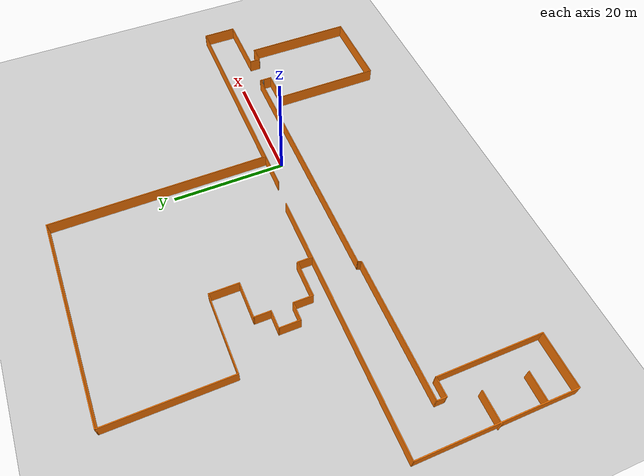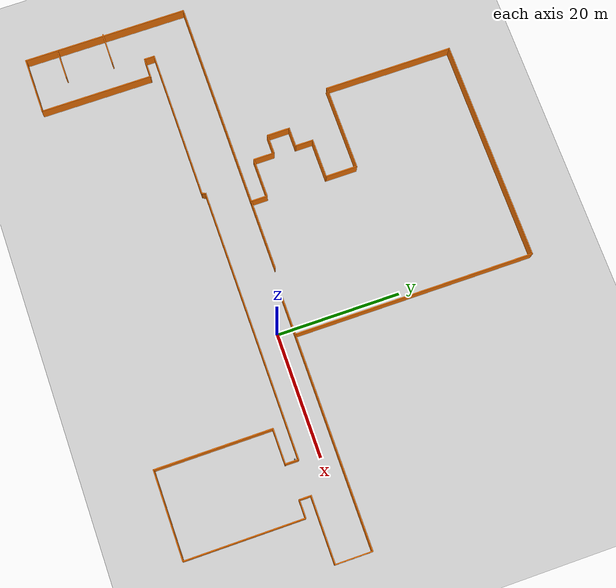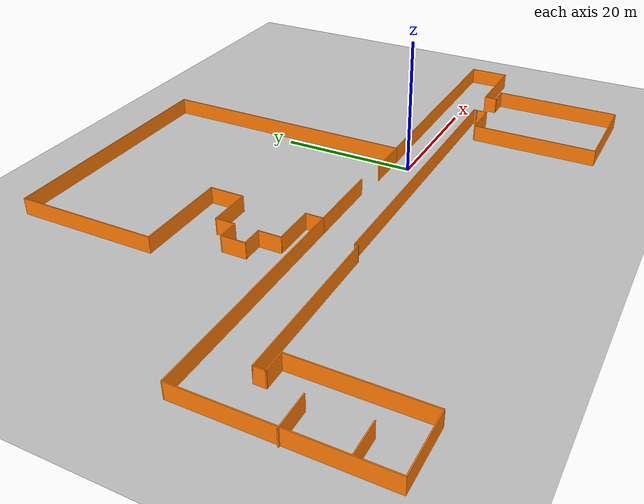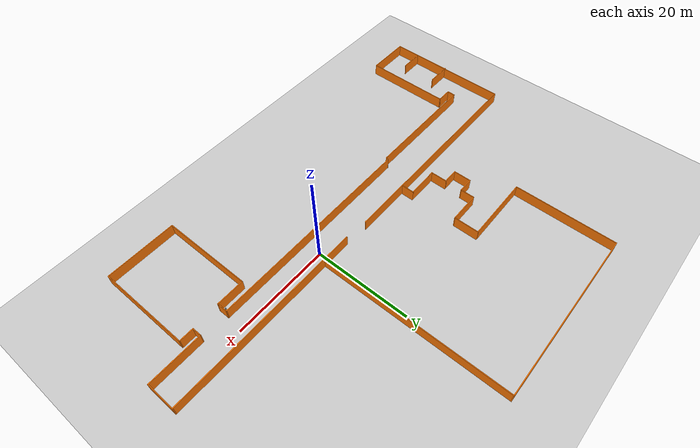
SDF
<?xml version="1.0" ?>
<sdf version="1.4">
  <world name="default">
    <!-- a GLOBAL LIGHT SOURCE -->
    <include>
      <uri>model://sun</uri>
    </include>
    <include>
      <uri>model://ground_plane</uri>
    </include>
    <physics type='ode'>
      <max_step_size>0.01</max_step_size>
      <real_time_factor>1</real_time_factor>
      <real_time_update_rate>100</real_time_update_rate>
      <gravity>0 0 -9.8</gravity>
    </physics>

  <model name='a2'>
    <pose frame=''>-9.85897 8.53324 0 0 -0 0</pose>
    <link name='Wall_15'>
      <collision name='Wall_15_Collision'>
        <geometry>
          <box>
            <size>0.15 0.15 2.5</size>
          </box>
        </geometry>
        <pose frame=''>0 0 1.25 0 -0 0</pose>
      </collision>
      <visual name='Wall_15_Visual'>
        <pose frame=''>0 0 1.25 0 -0 0</pose>
        <geometry>
          <box>
            <size>0.15 0.15 2.5</size>
          </box>
        </geometry>
        <material>
          <script>
            <uri>file://media/materials/scripts/gazebo.material</uri>
            <name>Gazebo/Grey</name>
          </script>
          <ambient>1 1 1 1</ambient>
        </material>
      </visual>
      <pose frame=''>28.959 -12.3832 0 0 -0 0</pose>
    </link>
    <link name='Wall_17'>
      <collision name='Wall_17_Collision'>
        <geometry>
          <box>
            <size>44 0.15 2.5</size>
          </box>
        </geometry>
        <pose frame=''>0 0 1.25 0 -0 0</pose>
      </collision>
      <visual name='Wall_17_Visual'>
        <pose frame=''>0 0 1.25 0 -0 0</pose>
        <geometry>
          <box>
            <size>44 0.15 2.5</size>
          </box>
        </geometry>
        <material>
          <script>
            <uri>file://media/materials/scripts/gazebo.material</uri>
            <name>Gazebo/Grey</name>
          </script>
          <ambient>0.996078 0.47451 0.0196078 1</ambient>
        </material>
      </visual>
      <pose frame=''>7.29394 -11.875 0 0 -0 0</pose>
    </link>
    <link name='Wall_18'>
      <collision name='Wall_18_Collision'>
        <geometry>
          <box>
            <size>2.25 0.15 2.5</size>
          </box>
        </geometry>
        <pose frame=''>0 0 1.25 0 -0 0</pose>
      </collision>
      <visual name='Wall_18_Visual'>
        <pose frame=''>0 0 1.25 0 -0 0</pose>
        <geometry>
          <box>
            <size>2.25 0.15 2.5</size>
          </box>
        </geometry>
        <material>
          <script>
            <uri>file://media/materials/scripts/gazebo.material</uri>
            <name>Gazebo/Grey</name>
          </script>
          <ambient>0.996078 0.47451 0.0196078 1</ambient>
        </material>
      </visual>
      <pose frame=''>29.2189 -12.925 0 0 0 -1.5708</pose>
    </link>
    <link name='Wall_19'>
      <collision name='Wall_19_Collision'>
        <geometry>
          <box>
            <size>5.75 0.15 2.5</size>
          </box>
        </geometry>
        <pose frame=''>0 0 1.25 0 -0 0</pose>
      </collision>
      <visual name='Wall_19_Visual'>
        <pose frame=''>0 0 1.25 0 -0 0</pose>
        <geometry>
          <box>
            <size>5.75 0.15 2.5</size>
          </box>
        </geometry>
        <material>
          <script>
            <uri>file://media/materials/scripts/gazebo.material</uri>
            <name>Gazebo/Grey</name>
          </script>
          <ambient>0.996078 0.47451 0.0196078 1</ambient>
        </material>
      </visual>
      <pose frame=''>26.4189 -13.975 0 0 -0 3.14159</pose>
    </link>
    <link name='Wall_20'>
      <collision name='Wall_20_Collision'>
        <geometry>
          <box>
            <size>19 0.15 2.5</size>
          </box>
        </geometry>
        <pose frame=''>0 0 1.25 0 -0 0</pose>
      </collision>
      <visual name='Wall_20_Visual'>
        <pose frame=''>0 0 1.25 0 -0 0</pose>
        <geometry>
          <box>
            <size>19 0.15 2.5</size>
          </box>
        </geometry>
        <material>
          <script>
            <uri>file://media/materials/scripts/gazebo.material</uri>
            <name>Gazebo/Grey</name>
          </script>
          <ambient>0.996078 0.47451 0.0196078 1</ambient>
        </material>
      </visual>
      <pose frame=''>23.6189 -23.4 0 0 0 -1.5708</pose>
    </link>
    <link name='Wall_21'>
      <collision name='Wall_21_Collision'>
        <geometry>
          <box>
            <size>14.25 0.15 2.5</size>
          </box>
        </geometry>
        <pose frame=''>0 0 1.25 0 -0 0</pose>
      </collision>
      <visual name='Wall_21_Visual'>
        <pose frame=''>0 0 1.25 0 -0 0</pose>
        <geometry>
          <box>
            <size>14.25 0.15 2.5</size>
          </box>
        </geometry>
        <material>
          <script>
            <uri>file://media/materials/scripts/gazebo.material</uri>
            <name>Gazebo/Grey</name>
          </script>
          <ambient>0.996078 0.47451 0.0196078 1</ambient>
        </material>
      </visual>
      <pose frame=''>30.6689 -32.825 0 0 -0 0</pose>
    </link>
    <link name='Wall_22'>
      <collision name='Wall_22_Collision'>
        <geometry>
          <box>
            <size>19.25 0.15 2.5</size>
          </box>
        </geometry>
        <pose frame=''>0 0 1.25 0 -0 0</pose>
      </collision>
      <visual name='Wall_22_Visual'>
        <pose frame=''>0 0 1.25 0 -0 0</pose>
        <geometry>
          <box>
            <size>19.25 0.15 2.5</size>
          </box>
        </geometry>
        <material>
          <script>
            <uri>file://media/materials/scripts/gazebo.material</uri>
            <name>Gazebo/Grey</name>
          </script>
          <ambient>0.996078 0.47451 0.0196078 1</ambient>
        </material>
      </visual>
      <pose frame=''>37.7189 -23.275 0 0 -0 1.5708</pose>
    </link>
    <link name='Wall_23'>
      <collision name='Wall_23_Collision'>
        <geometry>
          <box>
            <size>3 0.15 2.5</size>
          </box>
        </geometry>
        <pose frame=''>0 0 1.25 0 -0 0</pose>
      </collision>
      <visual name='Wall_23_Visual'>
        <pose frame=''>0 0 1.25 0 -0 0</pose>
        <geometry>
          <box>
            <size>3 0.15 2.5</size>
          </box>
        </geometry>
        <material>
          <script>
            <uri>file://media/materials/scripts/gazebo.material</uri>
            <name>Gazebo/Grey</name>
          </script>
          <ambient>0.996078 0.47451 0.0196078 1</ambient>
        </material>
      </visual>
      <pose frame=''>36.2939 -13.725 0 0 -0 3.14159</pose>
    </link>
    <link name='Wall_24'>
      <collision name='Wall_24_Collision'>
        <geometry>
          <box>
            <size>2 0.15 2.5</size>
          </box>
        </geometry>
        <pose frame=''>0 0 1.25 0 -0 0</pose>
      </collision>
      <visual name='Wall_24_Visual'>
        <pose frame=''>0 0 1.25 0 -0 0</pose>
        <geometry>
          <box>
            <size>2 0.15 2.5</size>
          </box>
        </geometry>
        <material>
          <script>
            <uri>file://media/materials/scripts/gazebo.material</uri>
            <name>Gazebo/Grey</name>
          </script>
          <ambient>0.996078 0.47451 0.0196078 1</ambient>
        </material>
      </visual>
      <pose frame=''>34.8689 -12.8 0 0 -0 1.5708</pose>
    </link>
    <link name='Wall_25'>
      <collision name='Wall_25_Collision'>
        <geometry>
          <box>
            <size>10.75 0.15 2.5</size>
          </box>
        </geometry>
        <pose frame=''>0 0 1.25 0 -0 0</pose>
      </collision>
      <visual name='Wall_25_Visual'>
        <pose frame=''>0 0 1.25 0 -0 0</pose>
        <geometry>
          <box>
            <size>10.75 0.15 2.5</size>
          </box>
        </geometry>
        <material>
          <script>
            <uri>file://media/materials/scripts/gazebo.material</uri>
            <name>Gazebo/Grey</name>
          </script>
          <ambient>0.996078 0.47451 0.0196078 1</ambient>
        </material>
      </visual>
      <pose frame=''>40.1689 -11.875 0 0 -0 0</pose>
    </link>
    <link name='Wall_26'>
      <collision name='Wall_26_Collision'>
        <geometry>
          <box>
            <size>6 0.15 2.5</size>
          </box>
        </geometry>
        <pose frame=''>0 0 1.25 0 -0 0</pose>
      </collision>
      <visual name='Wall_26_Visual'>
        <pose frame=''>0 0 1.25 0 -0 0</pose>
        <geometry>
          <box>
            <size>6 0.15 2.5</size>
          </box>
        </geometry>
        <material>
          <script>
            <uri>file://media/materials/scripts/gazebo.material</uri>
            <name>Gazebo/Grey</name>
          </script>
          <ambient>0.996078 0.47451 0.0196078 1</ambient>
        </material>
      </visual>
      <pose frame=''>45.4689 -8.95 0 0 -0 1.5708</pose>
    </link>
    <link name='Wall_27'>
      <collision name='Wall_27_Collision'>
        <geometry>
          <box>
            <size>34.5 0.15 2.5</size>
          </box>
        </geometry>
        <pose frame=''>0 0 1.25 0 -0 0</pose>
      </collision>
      <visual name='Wall_27_Visual'>
        <pose frame=''>0 0 1.25 0 -0 0</pose>
        <geometry>
          <box>
            <size>34.5 0.15 2.5</size>
          </box>
        </geometry>
        <material>
          <script>
            <uri>file://media/materials/scripts/gazebo.material</uri>
            <name>Gazebo/Grey</name>
          </script>
          <ambient>0.996078 0.47451 0.0196078 1</ambient>
        </material>
      </visual>
      <pose frame=''>28.2939 -6.025 0 0 -0 3.14159</pose>
    </link>
    <link name='Wall_28'>
      <collision name='Wall_28_Collision'>
        <geometry>
          <box>
            <size>39 0.15 2.5</size>
          </box>
        </geometry>
        <pose frame=''>0 0 1.25 0 -0 0</pose>
      </collision>
      <visual name='Wall_28_Visual'>
        <pose frame=''>0 0 1.25 0 -0 0</pose>
        <geometry>
          <box>
            <size>39 0.15 2.5</size>
          </box>
        </geometry>
        <material>
          <script>
            <uri>file://media/materials/scripts/gazebo.material</uri>
            <name>Gazebo/Grey</name>
          </script>
          <ambient>0.996078 0.47451 0.0196078 1</ambient>
        </material>
      </visual>
      <pose frame=''>11.1189 13.4 0 0 -0 1.5708</pose>
    </link>
    <link name='Wall_29'>
      <collision name='Wall_29_Collision'>
        <geometry>
          <box>
            <size>36.25 0.15 2.5</size>
          </box>
        </geometry>
        <pose frame=''>0 0 1.25 0 -0 0</pose>
      </collision>
      <visual name='Wall_29_Visual'>
        <pose frame=''>0 0 1.25 0 -0 0</pose>
        <geometry>
          <box>
            <size>36.25 0.15 2.5</size>
          </box>
        </geometry>
        <material>
          <script>
            <uri>file://media/materials/scripts/gazebo.material</uri>
            <name>Gazebo/Grey</name>
          </script>
          <ambient>0.996078 0.47451 0.0196078 1</ambient>
        </material>
      </visual>
      <pose frame=''>-6.93106 32.825 0 0 -0 3.14159</pose>
    </link>
    <link name='Wall_30'>
      <collision name='Wall_30_Collision'>
        <geometry>
          <box>
            <size>21 0.15 2.5</size>
          </box>
        </geometry>
        <pose frame=''>0 0 1.25 0 -0 0</pose>
      </collision>
      <visual name='Wall_30_Visual'>
        <pose frame=''>0 0 1.25 0 -0 0</pose>
        <geometry>
          <box>
            <size>21 0.15 2.5</size>
          </box>
        </geometry>
        <material>
          <script>
            <uri>file://media/materials/scripts/gazebo.material</uri>
            <name>Gazebo/Grey</name>
          </script>
          <ambient>0.996078 0.47451 0.0196078 1</ambient>
        </material>
      </visual>
      <pose frame=''>-24.9811 22.4 0 0 0 -1.5708</pose>
    </link>
    <link name='Wall_31'>
      <collision name='Wall_31_Collision'>
        <geometry>
          <box>
            <size>14 0.15 2.5</size>
          </box>
        </geometry>
        <pose frame=''>0 0 1.25 0 -0 0</pose>
      </collision>
      <visual name='Wall_31_Visual'>
        <pose frame=''>0 0 1.25 0 -0 0</pose>
        <geometry>
          <box>
            <size>14 0.15 2.5</size>
          </box>
        </geometry>
        <material>
          <script>
            <uri>file://media/materials/scripts/gazebo.material</uri>
            <name>Gazebo/Grey</name>
          </script>
          <ambient>0.996078 0.47451 0.0196078 1</ambient>
        </material>
      </visual>
      <pose frame=''>-18.0561 11.975 0 0 -0 0</pose>
    </link>
    <link name='Wall_32'>
      <collision name='Wall_32_Collision'>
        <geometry>
          <box>
            <size>5.25 0.15 2.5</size>
          </box>
        </geometry>
        <pose frame=''>0 0 1.25 0 -0 0</pose>
      </collision>
      <visual name='Wall_32_Visual'>
        <pose frame=''>0 0 1.25 0 -0 0</pose>
        <geometry>
          <box>
            <size>5.25 0.15 2.5</size>
          </box>
        </geometry>
        <material>
          <script>
            <uri>file://media/materials/scripts/gazebo.material</uri>
            <name>Gazebo/Grey</name>
          </script>
          <ambient>0.996078 0.47451 0.0196078 1</ambient>
        </material>
      </visual>
      <pose frame=''>-11.1311 9.425 0 0 0 -1.5708</pose>
    </link>
    <link name='Wall_33'>
      <collision name='Wall_33_Collision'>
        <geometry>
          <box>
            <size>6.5 0.15 2.5</size>
          </box>
        </geometry>
        <pose frame=''>0 0 1.25 0 -0 0</pose>
      </collision>
      <visual name='Wall_33_Visual'>
        <pose frame=''>0 0 1.25 0 -0 0</pose>
        <geometry>
          <box>
            <size>6.5 0.15 2.5</size>
          </box>
        </geometry>
        <material>
          <script>
            <uri>file://media/materials/scripts/gazebo.material</uri>
            <name>Gazebo/Grey</name>
          </script>
          <ambient>0.996078 0.47451 0.0196078 1</ambient>
        </material>
      </visual>
      <pose frame=''>-14.3061 6.875 0 0 -0 3.14159</pose>
    </link>
    <link name='Wall_34'>
      <collision name='Wall_34_Collision'>
        <geometry>
          <box>
            <size>3 0.15 2.5</size>
          </box>
        </geometry>
        <pose frame=''>0 0 1.25 0 -0 0</pose>
      </collision>
      <visual name='Wall_34_Visual'>
        <pose frame=''>0 0 1.25 0 -0 0</pose>
        <geometry>
          <box>
            <size>3 0.15 2.5</size>
          </box>
        </geometry>
        <material>
          <script>
            <uri>file://media/materials/scripts/gazebo.material</uri>
            <name>Gazebo/Grey</name>
          </script>
          <ambient>0.996078 0.47451 0.0196078 1</ambient>
        </material>
      </visual>
      <pose frame=''>-17.4811 5.45 0 0 0 -1.5708</pose>
    </link>
    <link name='Wall_35'>
      <collision name='Wall_35_Collision'>
        <geometry>
          <box>
            <size>3.25 0.15 2.5</size>
          </box>
        </geometry>
        <pose frame=''>0 0 1.25 0 -0 0</pose>
      </collision>
      <visual name='Wall_35_Visual'>
        <pose frame=''>0 0 1.25 0 -0 0</pose>
        <geometry>
          <box>
            <size>3.25 0.15 2.5</size>
          </box>
        </geometry>
        <material>
          <script>
            <uri>file://media/materials/scripts/gazebo.material</uri>
            <name>Gazebo/Grey</name>
          </script>
          <ambient>0.996078 0.47451 0.0196078 1</ambient>
        </material>
      </visual>
      <pose frame=''>-19.0311 4.025 0 0 -0 3.14159</pose>
    </link>
    <link name='Wall_36'>
      <collision name='Wall_36_Collision'>
        <geometry>
          <box>
            <size>3.75 0.15 2.5</size>
          </box>
        </geometry>
        <pose frame=''>0 0 1.25 0 -0 0</pose>
      </collision>
      <visual name='Wall_36_Visual'>
        <pose frame=''>0 0 1.25 0 -0 0</pose>
        <geometry>
          <box>
            <size>3.75 0.15 2.5</size>
          </box>
        </geometry>
        <material>
          <script>
            <uri>file://media/materials/scripts/gazebo.material</uri>
            <name>Gazebo/Grey</name>
          </script>
          <ambient>0.996078 0.47451 0.0196078 1</ambient>
        </material>
      </visual>
      <pose frame=''>-20.5811 2.225 0 0 0 -1.5708</pose>
    </link>
    <link name='Wall_37'>
      <collision name='Wall_37_Collision'>
        <geometry>
          <box>
            <size>3.25 0.15 2.5</size>
          </box>
        </geometry>
        <pose frame=''>0 0 1.25 0 -0 0</pose>
      </collision>
      <visual name='Wall_37_Visual'>
        <pose frame=''>0 0 1.25 0 -0 0</pose>
        <geometry>
          <box>
            <size>3.25 0.15 2.5</size>
          </box>
        </geometry>
        <material>
          <script>
            <uri>file://media/materials/scripts/gazebo.material</uri>
            <name>Gazebo/Grey</name>
          </script>
          <ambient>0.996078 0.47451 0.0196078 1</ambient>
        </material>
      </visual>
      <pose frame=''>-19.0311 0.424999 0 0 -0 0</pose>
    </link>
    <link name='Wall_38'>
      <collision name='Wall_38_Collision'>
        <geometry>
          <box>
            <size>3.5 0.15 2.5</size>
          </box>
        </geometry>
        <pose frame=''>0 0 1.25 0 -0 0</pose>
      </collision>
      <visual name='Wall_38_Visual'>
        <pose frame=''>0 0 1.25 0 -0 0</pose>
        <geometry>
          <box>
            <size>3.5 0.15 2.5</size>
          </box>
        </geometry>
        <material>
          <script>
            <uri>file://media/materials/scripts/gazebo.material</uri>
            <name>Gazebo/Grey</name>
          </script>
          <ambient>0.996078 0.47451 0.0196078 1</ambient>
        </material>
      </visual>
      <pose frame=''>-17.4811 -1.25 0 0 0 -1.5708</pose>
    </link>
    <link name='Wall_39'>
      <collision name='Wall_39_Collision'>
        <geometry>
          <box>
            <size>6.5 0.15 2.5</size>
          </box>
        </geometry>
        <pose frame=''>0 0 1.25 0 -0 0</pose>
      </collision>
      <visual name='Wall_39_Visual'>
        <pose frame=''>0 0 1.25 0 -0 0</pose>
        <geometry>
          <box>
            <size>6.5 0.15 2.5</size>
          </box>
        </geometry>
        <material>
          <script>
            <uri>file://media/materials/scripts/gazebo.material</uri>
            <name>Gazebo/Grey</name>
          </script>
          <ambient>0.996078 0.47451 0.0196078 1</ambient>
        </material>
      </visual>
      <pose frame=''>-14.3061 -2.925 0 0 -0 0</pose>
    </link>
    <link name='Wall_40'>
      <collision name='Wall_40_Collision'>
        <geometry>
          <box>
            <size>2.75 0.15 2.5</size>
          </box>
        </geometry>
        <pose frame=''>0 0 1.25 0 -0 0</pose>
      </collision>
      <visual name='Wall_40_Visual'>
        <pose frame=''>0 0 1.25 0 -0 0</pose>
        <geometry>
          <box>
            <size>2.75 0.15 2.5</size>
          </box>
        </geometry>
        <material>
          <script>
            <uri>file://media/materials/scripts/gazebo.material</uri>
            <name>Gazebo/Grey</name>
          </script>
          <ambient>0.996078 0.47451 0.0196078 1</ambient>
        </material>
      </visual>
      <pose frame=''>-11.1311 -4.225 0 0 0 -1.5708</pose>
    </link>
    <link name='Wall_41'>
      <collision name='Wall_41_Collision'>
        <geometry>
          <box>
            <size>34.25 0.15 2.5</size>
          </box>
        </geometry>
        <pose frame=''>0 0 1.25 0 -0 0</pose>
      </collision>
      <visual name='Wall_41_Visual'>
        <pose frame=''>0 0 1.25 0 -0 0</pose>
        <geometry>
          <box>
            <size>34.25 0.15 2.5</size>
          </box>
        </geometry>
        <material>
          <script>
            <uri>file://media/materials/scripts/gazebo.material</uri>
            <name>Gazebo/Grey</name>
          </script>
          <ambient>0.996078 0.47451 0.0196078 1</ambient>
        </material>
      </visual>
      <pose frame=''>-28.1811 -5.525 0 0 -0 3.14159</pose>
    </link>
    <link name='Wall_42'>
      <collision name='Wall_42_Collision'>
        <geometry>
          <box>
            <size>26.75 0.15 2.5</size>
          </box>
        </geometry>
        <pose frame=''>0 0 1.25 0 -0 0</pose>
      </collision>
      <visual name='Wall_42_Visual'>
        <pose frame=''>0 0 1.25 0 -0 0</pose>
        <geometry>
          <box>
            <size>26.75 0.15 2.5</size>
          </box>
        </geometry>
        <material>
          <script>
            <uri>file://media/materials/scripts/gazebo.material</uri>
            <name>Gazebo/Grey</name>
          </script>
          <ambient>0.996078 0.47451 0.0196078 1</ambient>
        </material>
      </visual>
      <pose frame=''>-45.2311 -18.825 0 0 0 -1.5708</pose>
    </link>
    <link name='Wall_43'>
      <collision name='Wall_43_Collision'>
        <geometry>
          <box>
            <size>9.25 0.15 2.5</size>
          </box>
        </geometry>
        <pose frame=''>0 0 1.25 0 -0 0</pose>
      </collision>
      <visual name='Wall_43_Visual'>
        <pose frame=''>0 0 1.25 0 -0 0</pose>
        <geometry>
          <box>
            <size>9.25 0.15 2.5</size>
          </box>
        </geometry>
        <material>
          <script>
            <uri>file://media/materials/scripts/gazebo.material</uri>
            <name>Gazebo/Grey</name>
          </script>
          <ambient>0.996078 0.47451 0.0196078 1</ambient>
        </material>
      </visual>
      <pose frame=''>-40.6811 -32.125 0 0 -0 0</pose>
    </link>
    <link name='Wall_44'>
      <collision name='Wall_44_Collision'>
        <geometry>
          <box>
            <size>18.25 0.15 2.5</size>
          </box>
        </geometry>
        <pose frame=''>0 0 1.25 0 -0 0</pose>
      </collision>
      <visual name='Wall_44_Visual'>
        <pose frame=''>0 0 1.25 0 -0 0</pose>
        <geometry>
          <box>
            <size>18.25 0.15 2.5</size>
          </box>
        </geometry>
        <material>
          <script>
            <uri>file://media/materials/scripts/gazebo.material</uri>
            <name>Gazebo/Grey</name>
          </script>
          <ambient>0.996078 0.47451 0.0196078 1</ambient>
        </material>
      </visual>
      <pose frame=''>-36.1311 -23.075 0 0 -0 1.5708</pose>
    </link>
    <link name='Wall_45'>
      <collision name='Wall_45_Collision'>
        <geometry>
          <box>
            <size>3.25 0.15 2.5</size>
          </box>
        </geometry>
        <pose frame=''>0 0 1.25 0 -0 0</pose>
      </collision>
      <visual name='Wall_45_Visual'>
        <pose frame=''>0 0 1.25 0 -0 0</pose>
        <geometry>
          <box>
            <size>3.25 0.15 2.5</size>
          </box>
        </geometry>
        <material>
          <script>
            <uri>file://media/materials/scripts/gazebo.material</uri>
            <name>Gazebo/Grey</name>
          </script>
          <ambient>0.996078 0.47451 0.0196078 1</ambient>
        </material>
      </visual>
      <pose frame=''>-37.6811 -14.025 0 0 -0 3.14159</pose>
    </link>
    <link name='Wall_46'>
      <collision name='Wall_46_Collision'>
        <geometry>
          <box>
            <size>1.75 0.15 2.5</size>
          </box>
        </geometry>
        <pose frame=''>0 0 1.25 0 -0 0</pose>
      </collision>
      <visual name='Wall_46_Visual'>
        <pose frame=''>0 0 1.25 0 -0 0</pose>
        <geometry>
          <box>
            <size>1.75 0.15 2.5</size>
          </box>
        </geometry>
        <material>
          <script>
            <uri>file://media/materials/scripts/gazebo.material</uri>
            <name>Gazebo/Grey</name>
          </script>
          <ambient>0.996078 0.47451 0.0196078 1</ambient>
        </material>
      </visual>
      <pose frame=''>-39.2311 -13.225 0 0 -0 1.5708</pose>
    </link>
    <link name='Wall_47'>
      <collision name='Wall_47_Collision'>
        <geometry>
          <box>
            <size>24.5 0.15 2.5</size>
          </box>
        </geometry>
        <pose frame=''>0 0 1.25 0 -0 0</pose>
      </collision>
      <visual name='Wall_47_Visual'>
        <pose frame=''>0 0 1.25 0 -0 0</pose>
        <geometry>
          <box>
            <size>24.5 0.15 2.5</size>
          </box>
        </geometry>
        <material>
          <script>
            <uri>file://media/materials/scripts/gazebo.material</uri>
            <name>Gazebo/Grey</name>
          </script>
          <ambient>0.996078 0.47451 0.0196078 1</ambient>
        </material>
      </visual>
      <pose frame=''>-27.0561 -12.425 0 0 -0 0</pose>
    </link>
    <link name='Wall_48'>
      <collision name='Wall_48_Collision'>
        <geometry>
          <box>
            <size>0.754152 0.15 2.5</size>
          </box>
        </geometry>
        <pose frame=''>0 0 1.25 0 -0 0</pose>
      </collision>
      <visual name='Wall_48_Visual'>
        <pose frame=''>0 0 1.25 0 -0 0</pose>
        <geometry>
          <box>
            <size>0.754152 0.15 2.5</size>
          </box>
        </geometry>
        <material>
          <script>
            <uri>file://media/materials/scripts/gazebo.material</uri>
            <name>Gazebo/Grey</name>
          </script>
          <ambient>0.996078 0.47451 0.0196078 1</ambient>
        </material>
      </visual>
      <pose frame=''>-14.7561 -12.15 0 0 -0 1.14417</pose>
    </link>
    <link name='Wall_50'>
      <collision name='Wall_50_Collision'>
        <geometry>
          <box>
            <size>11.5 0.15 2.5</size>
          </box>
        </geometry>
        <pose frame=''>0 0 1.25 0 -0 0</pose>
      </collision>
      <visual name='Wall_50_Visual'>
        <pose frame=''>0 0 1.25 0 -0 0</pose>
        <geometry>
          <box>
            <size>11.5 0.15 2.5</size>
          </box>
        </geometry>
        <material>
          <script>
            <uri>file://media/materials/scripts/gazebo.material</uri>
            <name>Gazebo/Grey</name>
          </script>
          <ambient>0.996078 0.47451 0.0196078 1</ambient>
        </material>
      </visual>
      <pose frame=''>-5.45606 -5.525 0 0 -0 0</pose>
    </link>
    <link name='Wall_52'>
      <collision name='Wall_52_Collision'>
        <geometry>
          <box>
            <size>6.25 0.15 2.5</size>
          </box>
        </geometry>
        <pose frame=''>0 0 1.25 0 -0 0</pose>
      </collision>
      <visual name='Wall_52_Visual'>
        <pose frame=''>0 0 1.25 0 -0 0</pose>
        <geometry>
          <box>
            <size>6.25 0.15 2.5</size>
          </box>
        </geometry>
        <material>
          <script>
            <uri>file://media/materials/scripts/gazebo.material</uri>
            <name>Gazebo/Grey</name>
          </script>
          <ambient>0.996078 0.47451 0.0196078 1</ambient>
        </material>
      </visual>
      <pose frame=''>8.06894 -6.025 0 0 -0 3.14159</pose>
    </link>
    <link name='Wall_54'>
      <collision name='Wall_54_Collision'>
        <geometry>
          <box>
            <size>5.25 0.15 2.5</size>
          </box>
        </geometry>
        <pose frame=''>0 0 1.25 0 -0 0</pose>
      </collision>
      <visual name='Wall_54_Visual'>
        <pose frame=''>0 0 1.25 0 -0 0</pose>
        <geometry>
          <box>
            <size>5.25 0.15 2.5</size>
          </box>
        </geometry>
        <material>
          <script>
            <uri>file://media/materials/scripts/gazebo.material</uri>
            <name>Gazebo/Grey</name>
          </script>
          <ambient>0.996078 0.47451 0.0196078 1</ambient>
        </material>
      </visual>
      <pose frame=''>-42.9189 -19.1067 0 0 -0 0</pose>
    </link>
    <link name='Wall_56'>
      <collision name='Wall_56_Collision'>
        <geometry>
          <box>
            <size>4.75 0.15 2.5</size>
          </box>
        </geometry>
        <pose frame=''>0 0 1.25 0 -0 0</pose>
      </collision>
      <visual name='Wall_56_Visual'>
        <pose frame=''>0 0 1.25 0 -0 0</pose>
        <geometry>
          <box>
            <size>4.75 0.15 2.5</size>
          </box>
        </geometry>
        <material>
          <script>
            <uri>file://media/materials/scripts/gazebo.material</uri>
            <name>Gazebo/Grey</name>
          </script>
          <ambient>0.996078 0.47451 0.0196078 1</ambient>
        </material>
      </visual>
      <pose frame=''>-42.7925 -26.8235 0 0 -0 0</pose>
    </link>
    <static>1</static>
  </model>

  </world>
</sdf>
